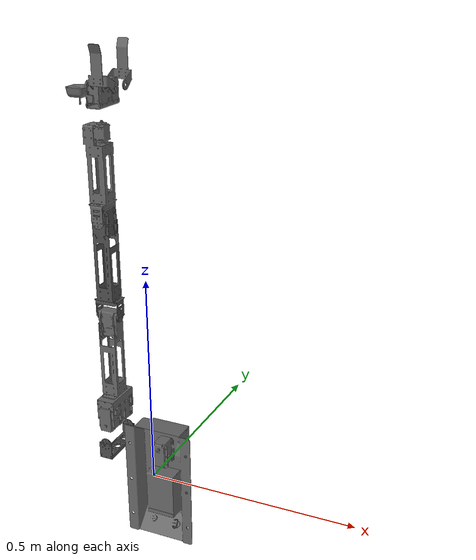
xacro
<?xml version="1.0"?>
<robot name="komodo_arm">

	<link name="dummy_link">
	</link>
	<joint name="dummy_joint" type="fixed">
		<origin xyz="0.0 0.0 0.0" rpy="0 0 0" />
		<parent link="dummy_link" />
		<child link="Arm_base_link" />
		<axis xyz="0 0 0" />
	</joint>

  <link
    name="Arm_base_link">
    <inertial>
      <origin xyz="0.0 0.0 0.0" rpy="0 0 0" />
      <mass
        value="1.08982930885161" />
      <inertia
        ixx="0.00311458437968986"
        ixy="-7.0610782277189E-06"
        ixz="-0.000262941654993437"
        iyy="0.00855106134499406"
        iyz="1.00391927392762E-06"
        izz="0.0104177337437887" />
    </inertial>
    <visual>
      <origin
        xyz="0 0 0"
        rpy="0 0 0" />
      <geometry>
        <mesh
          filename="package://ric_description/komodo/meshes/Arm_base_link.STL" />
      </geometry>
      <material
        name="">
        <color
          rgba="0.4 0.4 0.4 1" />
      </material>
    </visual>
    <collision>
      <origin
        xyz="0 0 0"
        rpy="0 0 0" />
      <geometry>
        <mesh
          filename="package://ric_description/komodo/meshes/Arm_base_link.STL" />
      </geometry>
    </collision>
  </link>

  <link
    name="base_rotation_link">
    <inertial>
      <origin
        xyz="-1.11022302462516E-16 -7.80223872637444E-17 0.0660708417371112"
        rpy="0 0 0" />
      <mass
        value="1.4054258533062" />
      <inertia
        ixx="0.00159425912810341"
        ixy="-8.40269196653518E-08"
        ixz="-1.60925604895535E-19"
        iyy="0.000605522001732049"
        iyz="-6.08768470792684E-19"
        izz="0.00123388334665811" />
    </inertial>
    <visual>
      <origin
        xyz="0 0 0"
        rpy="0 0 0" />
      <geometry>
        <mesh filename="package://ric_description/komodo/meshes/base_rotation_link.STL" />
      </geometry>
      <material
        name="">
        <color
          rgba="0.3 0.3 0.3 1" />
      </material>
    </visual>
    <collision>
      <origin
        xyz="0 0 0"
        rpy="0 0 0" />
      <geometry>
        <mesh filename="package://ric_description/komodo/meshes/base_rotation_link.STL" /> <!-- Simplified -->
      </geometry>
    </collision>
  </link>

  <joint
    name="base_rotation_joint"
    type="revolute">
    <origin
      xyz="-0.096277996026178 0 0.0549000000000002"
      rpy="-5.46369598732866E-16 1.34659130519145E-15 -2.1922983760752E-31" />
    <parent
      link="Arm_base_link" />
    <child
      link="base_rotation_link" />
    <axis
      xyz="0 0 1" />
    <limit
      lower="-3.14"
      upper="3.14"
      effort="10"
      velocity="0" />
  </joint>

  <link
    name="shoulder_link">
    <inertial>
      <origin
        xyz="-4.66231481405233E-06 -9.82289126283389E-05 0.0772888499682157"
        rpy="0 0 0" />
      <mass
        value="0.191480823048406" />
      <inertia
        ixx="0.00107301595696304"
        ixy="-2.9789063890745E-07"
        ixz="-2.01216953964121E-08"
        iyy="0.000975953125213584"
        iyz="-1.19601921452086E-06"
        izz="0.000217659789393094" />
    </inertial>
    <visual>
      <origin
        xyz="0 0 0"
        rpy="0 0 0" />
      <geometry>
        <mesh filename="package://ric_description/komodo/meshes/shoulder_link.STL" />
      </geometry>
      <material
        name="">
        <color
          rgba="0.4 0.4 0.4 1" />
      </material>
    </visual>
    <collision>
      <origin
        xyz="0 0 0"
        rpy="0 0 0" />
      <geometry>
        <mesh filename="package://ric_description/komodo/meshes/shoulder_link.STL" /> <!-- Simplified -->
      </geometry>
    </collision>
  </link>
  <joint
    name="shoulder_joint"
    type="revolute">
    <origin
      xyz="0 0 0.0834999999999999"
      rpy="-4.20159904047482E-15 -5.97509793174248E-16 9.93431320775303E-15" />
    <parent
      link="base_rotation_link" />
    <child
      link="shoulder_link" />
    <axis
      xyz="0 1 0" />
    <limit
      lower="-1.57"
      upper="1.57"
      effort="2000"
      velocity="0" />
  </joint>
  <link
    name="elbow1_link">
    <inertial>
      <origin
        xyz="3.38561240652013E-05 2.66604610292575E-06 0.0239321015909688"
        rpy="0 0 0" />
      <mass
        value="0.759959116000226" />
      <inertia
        ixx="0.0011156254663426"
        ixy="3.16193221175592E-07"
        ixz="2.89169705133133E-06"
        iyy="0.00114606034071406"
        iyz="-8.11914906919631E-08"
        izz="0.000237163435713384" />
    </inertial>
    <visual>
      <origin
        xyz="0 0 0"
        rpy="0 0 0" />
      <geometry>
        <mesh filename="package://ric_description/komodo/meshes/elbow1_link.STL" />  <!-- Simplified -->
      </geometry>
      <material
        name="">
        <color
          rgba="0.3 0.3 0.3 1" />
      </material>
    </visual>
    <collision>
      <origin
        xyz="0 0 0"
        rpy="0 0 0" />
      <geometry>
        <mesh filename="package://ric_description/komodo/meshes/elbow1_link.STL" />  <!-- Simplified -->
      </geometry>
    </collision>
  </link>
  <joint
    name="elbow1_joint"
    type="revolute">
    <origin
      xyz="0 -0.000251155668932789 0.266305434894181"
      rpy="1.44504380352115E-15 1.11628850952447E-06 -9.93431159466724E-15" />
    <parent
      link="shoulder_link" />
    <child
      link="elbow1_link" />
    <axis
      xyz="-0.999999999998754 0 0" />
    <limit
      lower="-3.14"
      upper="3.14"
      effort="100"
      velocity="0" />
  </joint>
  <link
    name="elbow2_link">
    <inertial>
      <origin
        xyz="-2.29085121194481E-05 -0.000512185919169572 0.0885118786028204"
        rpy="0 0 0" />
      <mass
        value="1.12138857800426" />
      <inertia
        ixx="0.0011156254663426"
        ixy="3.04261287700186E-07"
        ixz="-1.22468079415109E-06"
        iyy="0.0110437302875007"
        iyz="-7.91547787630536E-05"
        izz="0.000331598270284794" />
    </inertial>
    <visual>
      <origin
        xyz="0 0 0"
        rpy="0 0 0" />
      <geometry>
        <mesh
           filename="package://ric_description/komodo/meshes/elbow2_link.STL" />  <!-- Simplified -->
      </geometry>
      <material
        name="">
        <color
          rgba="0.4 0.4 0.4 1" />
      </material>
    </visual>
    <collision>
      <origin
        xyz="0 0 0"
        rpy="0 0 0" />
      <geometry>
        <mesh
          filename="package://ric_description/komodo/meshes/elbow2_link.STL" />  <!-- Simplified -->
      </geometry>
    </collision>
  </link>
  <joint
    name="elbow2_joint"
    type="revolute">
    <origin
      xyz="0 0 0.223999999999899"
      rpy="-4.51048856041191E-16 3.35869632765754E-16 0" />
    <parent
      link="elbow1_link" />
    <child
      link="elbow2_link" />
    <axis
      xyz="0 1 0" />
    <limit
      lower="-3.14"
      upper="3.14"
      effort="10"
      velocity="0" />
  </joint>
  <link
    name="wrist_link">
    <inertial>
      <origin
        xyz="0 0 0"
        rpy="0 0 0" />
      <mass
        value="0.717337417215465" />
      <inertia
        ixx="0.000486392340366094"
        ixy="4.20757000035677E-12"
        ixz="-3.91843889020299E-06"
        iyy="0.000211170064630335"
        iyz="2.79335159568522E-12"
        izz="0.000437528795624211" />
    </inertial>
    <visual>
      <origin
        xyz="0 0 0"
        rpy="0 0 0" />
      <geometry>
        <mesh
        filename="package://ric_description/komodo/meshes/wrist_link.STL" />  <!-- Simplified -->
      </geometry>
      <material
        name="">
        <color
          rgba="0.4 0.4 0.4 1" />
      </material>
    </visual>
    <collision>
      <origin
        xyz="0 0 0"
        rpy="0 0 0" />
      <geometry>
        <mesh
          filename="package://ric_description/komodo/meshes/wrist_link.STL" />  <!-- Simplified -->
      </geometry>
    </collision>
  </link>
  <joint
    name="wrist_joint"
    type="revolute">
    <origin
      xyz="0.0137 0 0.244749999999997"
      rpy="0 0 0" />
    <parent
      link="elbow2_link" />
    <child
      link="wrist_link" />
    <axis
      xyz="0 0 0.999999999998754" />
    <limit
      lower="-3.14"
      upper="3.14"
      effort="10"
      velocity="0" />
  </joint>
  <link
    name="left_finger_link">
    <inertial>
      <origin
        xyz="-6.10622663543836E-16 0.0205697573116852 0.0301832532936965"
        rpy="0 0 0" />
      <mass
        value="0.0111981711598485" />
      <inertia
        ixx="0.000486392340366094"
        ixy="4.20757000035677E-12"
        ixz="-3.91843889020299E-06"
        iyy="0.000211170064630335"
        iyz="2.79335159568522E-12"
        izz="0.000437528795624211" />
    </inertial>
    <visual>
      <origin
        xyz="0 0 0"
        rpy="0 0 0" />
      <geometry>
        <mesh
          filename="package://ric_description/komodo/meshes/left_finger_link.STL" />  <!-- Simplified -->
      </geometry>
      <material
        name="">
        <color
          rgba="0.4 0.4 0.4 1" />
      </material>
    </visual>
    <collision>
      <origin
        xyz="0 0 0"
        rpy="0 0 0" />
      <geometry>
        <mesh
          filename="package://ric_description/komodo/meshes/left_finger_link.STL" />  <!-- Simplified -->
      </geometry>
    </collision>
  </link>
  <joint
    name="left_finger_joint"
    type="revolute">
    <origin
      xyz="-0.000250000000000111 0.021 0.0422500000000001"
      rpy="2.85979682697881E-15 1.01870746742143E-16 3.19235832636806E-21" />
    <parent
      link="wrist_link" />
    <child
      link="left_finger_link" />
    <axis
      xyz="1 0 0" />
    <limit
      lower="-3.14"
      upper="3.14"
      effort="10"
      velocity="0" />
  </joint>
  <link
    name="right_finger_link">
    <inertial>
      <origin
        xyz="2.77555756156289E-16 -0.0205697573116854 0.0301832532936965"
        rpy="0 0 0" />
      <mass
        value="0.0111981711598485" />
      <inertia
        ixx="0.000486392340366094"
        ixy="4.20757000035677E-12"
        ixz="-3.91843889020299E-06"
        iyy="0.000211170064630335"
        iyz="2.79335159568522E-12"
        izz="0.000437528795624211" />
    </inertial>
    <visual>
      <origin
        xyz="0 0 0"
        rpy="0 0 0" />
      <geometry>
        <mesh
          filename="package://ric_description/komodo/meshes/right_finger_link.STL" />  <!-- Simplified -->
      </geometry>
      <material
        name="">
        <color
          rgba="0.4 0.4 0.4 1" />
      </material>
    </visual>
    <collision>
      <origin
        xyz="0 0 0"
        rpy="0 0 0" />
      <geometry>
        <mesh
           filename="package://ric_description/komodo/meshes/right_finger_link.STL" />  <!-- Simplified -->
      </geometry>
    </collision>
  </link>
  <joint
    name="right_finger_joint"
    type="revolute">
    <origin
      xyz="-0.00024999999999889 -0.021 0.0422499999999999"
      rpy="0 3.19686557214722E-37 0" />
    <parent
      link="wrist_link" />
    <child
      link="right_finger_link" />
    <axis
      xyz="1 0 0" />
    <limit
      lower="-3.14"
      upper="3.14"
      effort="10"
      velocity="0" />
  </joint>
  <link
    name="Arm_Camera_link">
    <inertial>
      <origin
        xyz="3.63554297842268E-06 0.000213444909942184 -0.00979905208116372"
        rpy="0 0 0" />
      <mass
        value="0.0346828395874569" />
      <inertia
        ixx="6.28790794550091E-06"
        ixy="-2.06796512209413E-09"
        ixz="1.17989404036011E-09"
        iyy="6.08020883541883E-06"
        iyz="3.61783344700129E-08"
        izz="9.95214525566595E-06" />
    </inertial>
    <visual>
      <origin
        xyz="0 0 0"
        rpy="0 1.57 0" />
      <geometry>
        <mesh
          filename="package://ric_description/komodo/meshes/Arm_Camera_link.STL" />
      </geometry>
      <material
        name="">
        <color
          rgba="0.4 0.4 0.4 1" />
      </material>
    </visual>
    <collision>
      <origin
        xyz="0 0 0"
        rpy="0 0 0" />
      <geometry>
        <mesh
          filename="package://ric_description/komodo/meshes/Arm_Camera_link.STL" />
      </geometry>
    </collision>
  </link>
  <joint
    name="Arm_camera_joint"
    type="fixed">
    <origin
      xyz="-0.0552499999999999 0 0.0340250000000002"
      rpy="0 -1.57079632649567 0" />
    <parent
      link="wrist_link" />
    <child
      link="Arm_Camera_link" />
    <axis
      xyz="0 0 0.999999999998754" />
  </joint>

 </robot>
